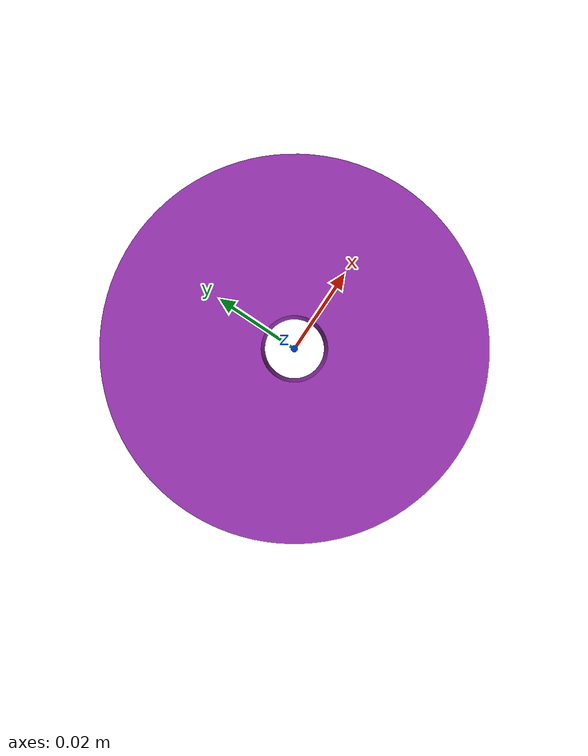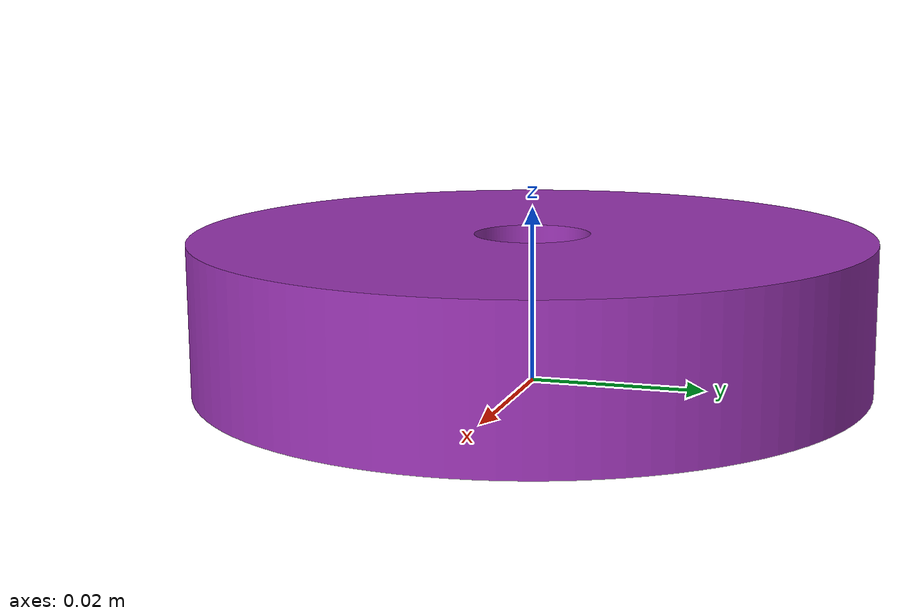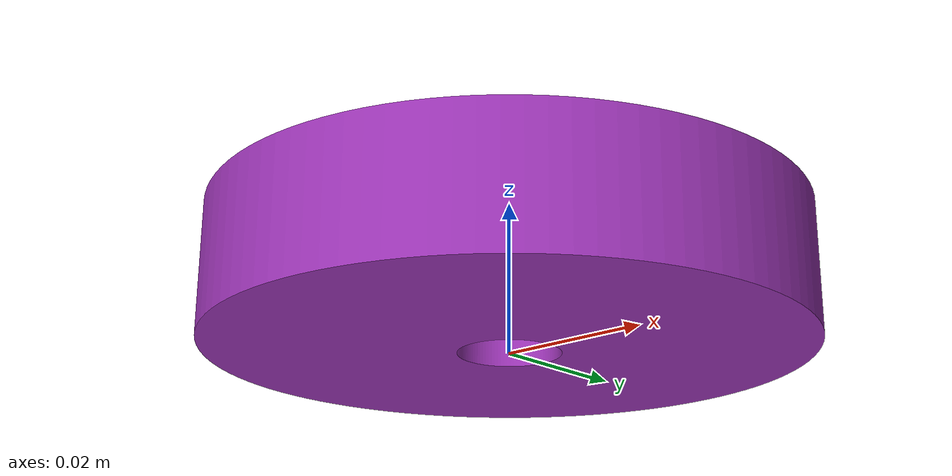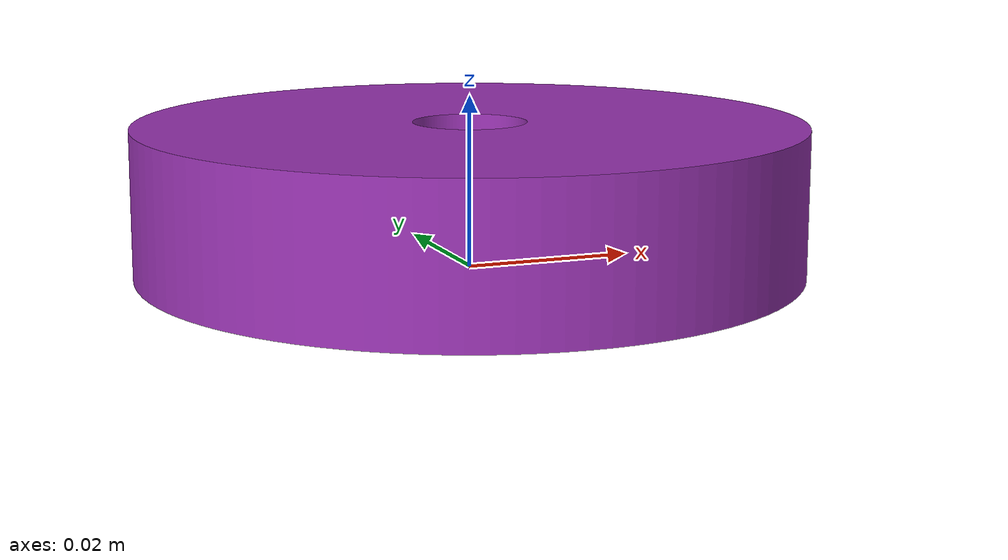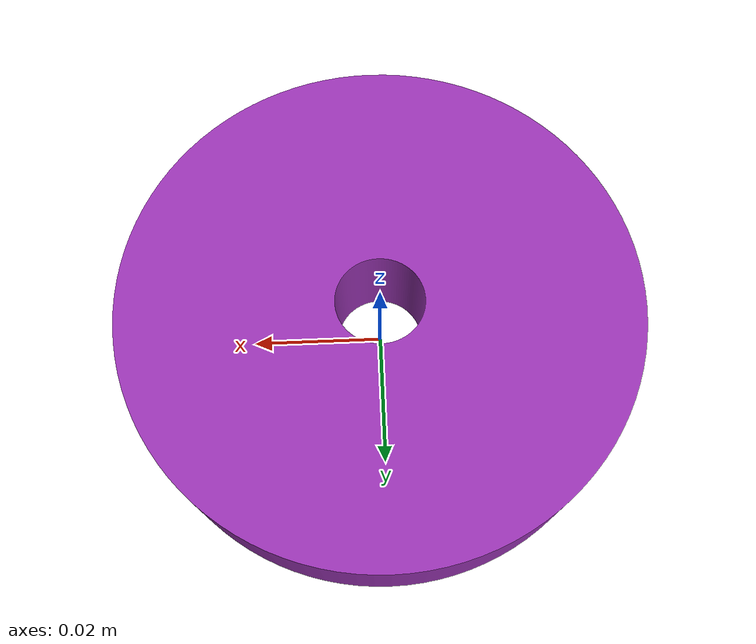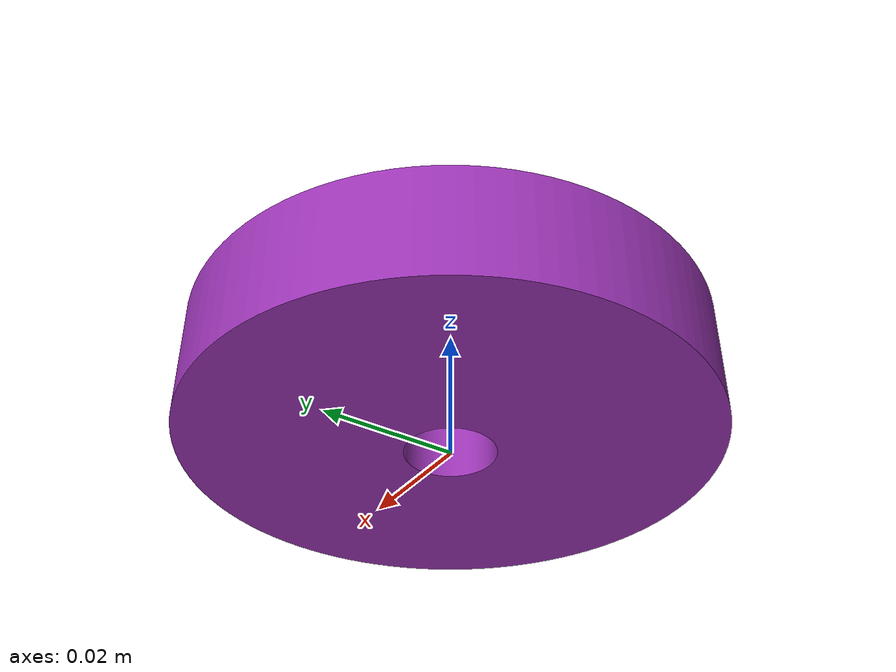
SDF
<sdf version='1.6'>
  <model name='hanoi_tower_d700'>
    <link name='token_d700_link'>
      <pose frame=''>0 0 0 0 -0 0</pose>
      <inertial>
        <pose frame=''>0 0 0.0085 0 -0 0</pose>
        <mass>0.45</mass>
        <inertia>
          <ixx>0.0001599</ixx>
          <ixy>0</ixy>
          <ixz>0</ixz>
          <iyy>0.0001599</iyy>
          <iyz>0</iyz>
          <izz>0.000298125</izz>
        </inertia>
      </inertial>
      <collision name='token_d700_link_fixed_joint_lump__collision_d700_b1_collision'>
        <pose frame=''>0 0 0.0085 0 -0 0</pose>
        <geometry>
          <mesh>
            <scale>1 1 1</scale>
            <uri>model://hanoi_tower_d700/meshes/token-700.stl</uri>
          </mesh>
        </geometry>
        <surface>
          <contact>
          <ode>
            <kp>1e15</kp>
            <kd>1e13</kd>
          </ode>
        </contact>
          <friction>
            <ode>
              <mu>10</mu>
              <mu2>10</mu2>
              <fdir1>1 1 1</fdir1>
            </ode>
          </friction>
          </surface>
      </collision>
      <visual name='token_d700_link_visual'>
        <pose frame=''>0 0 0.0085 0 -0 0</pose>
        <geometry>
          <mesh>
            <scale>1 1 1</scale>
            <uri>model://hanoi_tower_d700/meshes/token-700.dae</uri>
          </mesh>
        </geometry>
        <material>
          <script>
            <name>Gazebo/Purple</name>
            <uri>file://media/materials/scripts/gazebo.material</uri>
          </script>
        </material>
      </visual>
      <gravity>1</gravity>
    </link>
    <plugin filename="libhanoi_tower_token_plugin.so" name="hanoi_tower_token_plugin">
      <mixamorig_RightHandIndex1_z>0.2</mixamorig_RightHandIndex1_z>
      <mixamorig_RightHandIndex2_z>0.8</mixamorig_RightHandIndex2_z>
      <mixamorig_RightHandIndex3_z>0.6</mixamorig_RightHandIndex3_z>
      <token_radius>0.070</token_radius>
    </plugin>
  </model>
</sdf>
